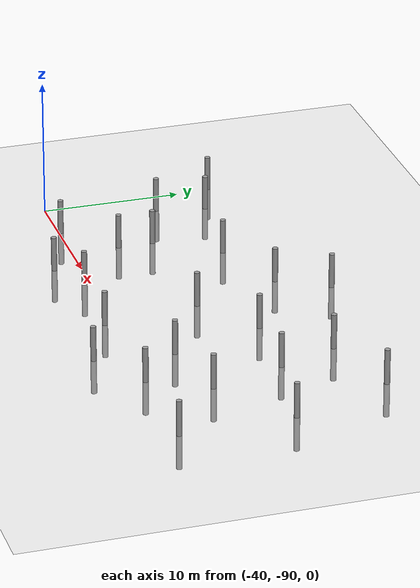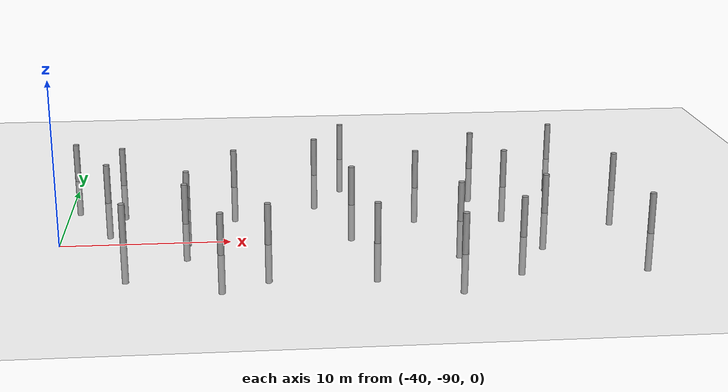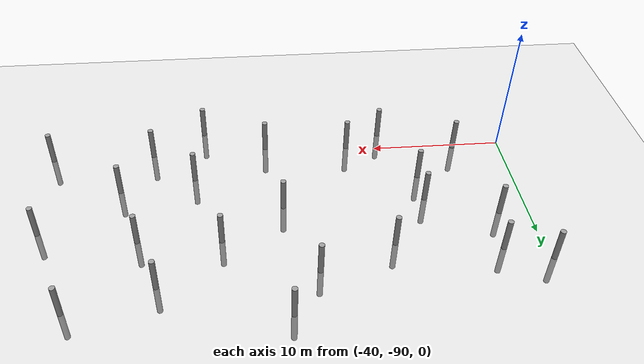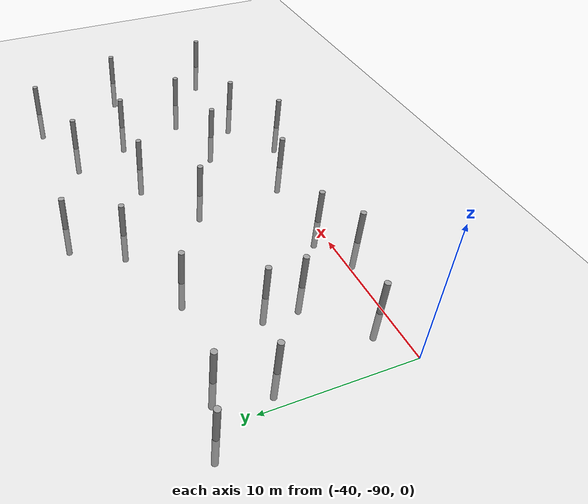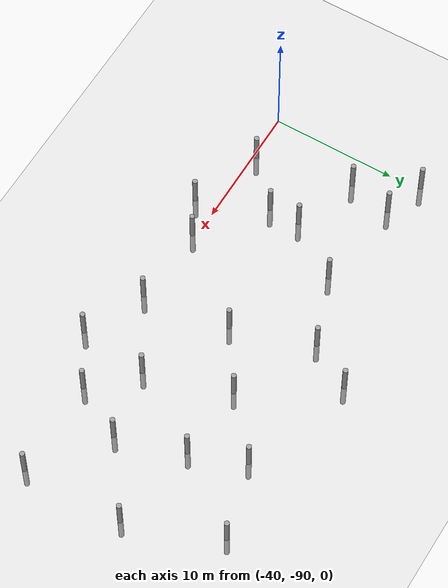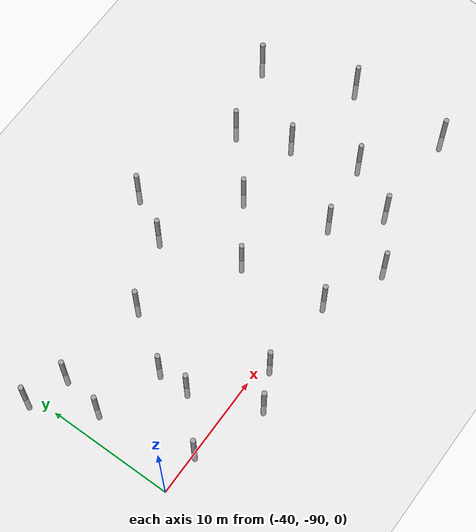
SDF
<sdf version="1.6">
 <world name="default">
  <model name="ground_plane">
   <static>1</static>
   <link name="link">
    <collision name="collision">
     <geometry><plane><normal>0 0 1</normal><size>100 100</size></plane></geometry>
     <surface><friction><ode><mu>100</mu><mu2>50</mu2></ode></friction></surface>
    </collision>
    <visual name="visual">
     <cast_shadows>0</cast_shadows>
     <geometry><plane><normal>0 0 1</normal><size>100 100</size></plane></geometry>
     <material>
      <script><uri>file://media/materials/scripts/gazebo.material</uri><name>Gazebo/Grey</name></script>
     </material>
    </visual>
   </link>
  </model>
  <model name="empty_pillars_12">
   <model name="empty_pillar_clone">
    <link name="link">
     <inertial>
      <mass>1</mass>
      <inertia><ixx>0.145833</ixx><ixy>0</ixy><ixz>0</ixz><iyy>0.145833</iyy><iyz>0</iyz><izz>0.125</izz></inertia>
     </inertial>
     <visual name="visual">
      <geometry><cylinder><radius>0.2</radius><length>5</length></cylinder></geometry>
      <material>
       <script><name>Gazebo/Grey</name><uri>file://media/materials/scripts/gazebo.material</uri></script>
       <shader type="vertex"><normal_map>__default__</normal_map></shader>
       <ambient>0.3 0.3 0.3 1</ambient>
       <diffuse>0.7 0.7 0.7 1</diffuse>
       <specular>0.01 0.01 0.01 1</specular>
       <emissive>0 0 0 1</emissive>
      </material>
     </visual>
     <collision name="collision">
      <geometry><cylinder><radius>0.05</radius><length>5</length></cylinder></geometry>
      <surface>
       <friction>
        <ode><mu>1</mu><mu2>1</mu2><fdir1>0 0 0</fdir1><slip1>0</slip1><slip2>0</slip2></ode>
        <torsional>
         <coefficient>1</coefficient>
         <patch_radius>0</patch_radius>
         <surface_radius>0</surface_radius>
         <use_patch_radius>1</use_patch_radius>
         <ode><slip>0</slip></ode>
        </torsional>
       </friction>
       <bounce><restitution_coefficient>0</restitution_coefficient><threshold>1e+06</threshold></bounce>
       <contact>
        <collide_without_contact>0</collide_without_contact>
        <collide_without_contact_bitmask>1</collide_without_contact_bitmask>
        <collide_bitmask>1</collide_bitmask>
        <ode>
         <soft_cfm>0</soft_cfm>
         <soft_erp>0.2</soft_erp>
         <kp>1e+13</kp>
         <kd>1</kd>
         <max_vel>0.01</max_vel>
         <min_depth>0</min_depth>
        </ode>
        <bullet>
         <split_impulse>1</split_impulse>
         <split_impulse_penetration_threshold>-0.01</split_impulse_penetration_threshold>
         <soft_cfm>0</soft_cfm>
         <soft_erp>0.2</soft_erp>
         <kp>1e+13</kp>
         <kd>1</kd>
        </bullet>
       </contact>
      </surface>
     </collision>
    </link>
    <static>0</static>
    <pose>1.47843 -4.49529 0 0 -0 0</pose>
   </model>
   <model name="empty_pillar_clone_0">
    <link name="link">
     <inertial>
      <mass>1</mass>
      <inertia><ixx>0.145833</ixx><ixy>0</ixy><ixz>0</ixz><iyy>0.145833</iyy><iyz>0</iyz><izz>0.125</izz></inertia>
     </inertial>
     <visual name="visual">
      <geometry><cylinder><radius>0.2</radius><length>5</length></cylinder></geometry>
      <material>
       <script><name>Gazebo/Grey</name><uri>file://media/materials/scripts/gazebo.material</uri></script>
       <shader type="vertex"><normal_map>__default__</normal_map></shader>
       <ambient>0.3 0.3 0.3 1</ambient>
       <diffuse>0.7 0.7 0.7 1</diffuse>
       <specular>0.01 0.01 0.01 1</specular>
       <emissive>0 0 0 1</emissive>
      </material>
     </visual>
     <collision name="collision">
      <geometry><cylinder><radius>0.05</radius><length>5</length></cylinder></geometry>
      <surface>
       <friction>
        <ode><mu>1</mu><mu2>1</mu2><fdir1>0 0 0</fdir1><slip1>0</slip1><slip2>0</slip2></ode>
        <torsional>
         <coefficient>1</coefficient>
         <patch_radius>0</patch_radius>
         <surface_radius>0</surface_radius>
         <use_patch_radius>1</use_patch_radius>
         <ode><slip>0</slip></ode>
        </torsional>
       </friction>
       <bounce><restitution_coefficient>0</restitution_coefficient><threshold>1e+06</threshold></bounce>
       <contact>
        <collide_without_contact>0</collide_without_contact>
        <collide_without_contact_bitmask>1</collide_without_contact_bitmask>
        <collide_bitmask>1</collide_bitmask>
        <ode>
         <soft_cfm>0</soft_cfm>
         <soft_erp>0.2</soft_erp>
         <kp>1e+13</kp>
         <kd>1</kd>
         <max_vel>0.01</max_vel>
         <min_depth>0</min_depth>
        </ode>
        <bullet>
         <split_impulse>1</split_impulse>
         <split_impulse_penetration_threshold>-0.01</split_impulse_penetration_threshold>
         <soft_cfm>0</soft_cfm>
         <soft_erp>0.2</soft_erp>
         <kp>1e+13</kp>
         <kd>1</kd>
        </bullet>
       </contact>
      </surface>
     </collision>
    </link>
    <static>0</static>
    <pose>10.3453 -7.35986 0 0 -0 0</pose>
   </model>
   <model name="empty_pillar_clone_10">
    <link name="link">
     <inertial>
      <mass>1</mass>
      <inertia><ixx>0.145833</ixx><ixy>0</ixy><ixz>0</ixz><iyy>0.145833</iyy><iyz>0</iyz><izz>0.125</izz></inertia>
     </inertial>
     <visual name="visual">
      <geometry><cylinder><radius>0.2</radius><length>5</length></cylinder></geometry>
      <material>
       <script><name>Gazebo/Grey</name><uri>file://media/materials/scripts/gazebo.material</uri></script>
       <shader type="vertex"><normal_map>__default__</normal_map></shader>
       <ambient>0.3 0.3 0.3 1</ambient>
       <diffuse>0.7 0.7 0.7 1</diffuse>
       <specular>0.01 0.01 0.01 1</specular>
       <emissive>0 0 0 1</emissive>
      </material>
     </visual>
     <collision name="collision">
      <geometry><cylinder><radius>0.05</radius><length>5</length></cylinder></geometry>
      <surface>
       <friction>
        <ode><mu>1</mu><mu2>1</mu2><fdir1>0 0 0</fdir1><slip1>0</slip1><slip2>0</slip2></ode>
        <torsional>
         <coefficient>1</coefficient>
         <patch_radius>0</patch_radius>
         <surface_radius>0</surface_radius>
         <use_patch_radius>1</use_patch_radius>
         <ode><slip>0</slip></ode>
        </torsional>
       </friction>
       <bounce><restitution_coefficient>0</restitution_coefficient><threshold>1e+06</threshold></bounce>
       <contact>
        <collide_without_contact>0</collide_without_contact>
        <collide_without_contact_bitmask>1</collide_without_contact_bitmask>
        <collide_bitmask>1</collide_bitmask>
        <ode>
         <soft_cfm>0</soft_cfm>
         <soft_erp>0.2</soft_erp>
         <kp>1e+13</kp>
         <kd>1</kd>
         <max_vel>0.01</max_vel>
         <min_depth>0</min_depth>
        </ode>
        <bullet>
         <split_impulse>1</split_impulse>
         <split_impulse_penetration_threshold>-0.01</split_impulse_penetration_threshold>
         <soft_cfm>0</soft_cfm>
         <soft_erp>0.2</soft_erp>
         <kp>1e+13</kp>
         <kd>1</kd>
        </bullet>
       </contact>
      </surface>
     </collision>
    </link>
    <static>0</static>
    <pose>13.5083 -16.8403 0 0 -0 0</pose>
   </model>
   <model name="empty_pillar_clone_11">
    <link name="link">
     <inertial>
      <mass>1</mass>
      <inertia><ixx>0.145833</ixx><ixy>0</ixy><ixz>0</ixz><iyy>0.145833</iyy><iyz>0</iyz><izz>0.125</izz></inertia>
     </inertial>
     <visual name="visual">
      <geometry><cylinder><radius>0.2</radius><length>5</length></cylinder></geometry>
      <material>
       <script><name>Gazebo/Grey</name><uri>file://media/materials/scripts/gazebo.material</uri></script>
       <shader type="vertex"><normal_map>__default__</normal_map></shader>
       <ambient>0.3 0.3 0.3 1</ambient>
       <diffuse>0.7 0.7 0.7 1</diffuse>
       <specular>0.01 0.01 0.01 1</specular>
       <emissive>0 0 0 1</emissive>
      </material>
     </visual>
     <collision name="collision">
      <geometry><cylinder><radius>0.05</radius><length>5</length></cylinder></geometry>
      <surface>
       <friction>
        <ode><mu>1</mu><mu2>1</mu2><fdir1>0 0 0</fdir1><slip1>0</slip1><slip2>0</slip2></ode>
        <torsional>
         <coefficient>1</coefficient>
         <patch_radius>0</patch_radius>
         <surface_radius>0</surface_radius>
         <use_patch_radius>1</use_patch_radius>
         <ode><slip>0</slip></ode>
        </torsional>
       </friction>
       <bounce><restitution_coefficient>0</restitution_coefficient><threshold>1e+06</threshold></bounce>
       <contact>
        <collide_without_contact>0</collide_without_contact>
        <collide_without_contact_bitmask>1</collide_without_contact_bitmask>
        <collide_bitmask>1</collide_bitmask>
        <ode>
         <soft_cfm>0</soft_cfm>
         <soft_erp>0.2</soft_erp>
         <kp>1e+13</kp>
         <kd>1</kd>
         <max_vel>0.01</max_vel>
         <min_depth>0</min_depth>
        </ode>
        <bullet>
         <split_impulse>1</split_impulse>
         <split_impulse_penetration_threshold>-0.01</split_impulse_penetration_threshold>
         <soft_cfm>0</soft_cfm>
         <soft_erp>0.2</soft_erp>
         <kp>1e+13</kp>
         <kd>1</kd>
        </bullet>
       </contact>
      </surface>
     </collision>
    </link>
    <static>0</static>
    <pose>7.98536 -17.8403 0 0 -0 0</pose>
   </model>
   <model name="empty_pillar_clone_12">
    <link name="link">
     <inertial>
      <mass>1</mass>
      <inertia><ixx>0.145833</ixx><ixy>0</ixy><ixz>0</ixz><iyy>0.145833</iyy><iyz>0</iyz><izz>0.125</izz></inertia>
     </inertial>
     <visual name="visual">
      <geometry><cylinder><radius>0.2</radius><length>5</length></cylinder></geometry>
      <material>
       <script><name>Gazebo/Grey</name><uri>file://media/materials/scripts/gazebo.material</uri></script>
       <shader type="vertex"><normal_map>__default__</normal_map></shader>
       <ambient>0.3 0.3 0.3 1</ambient>
       <diffuse>0.7 0.7 0.7 1</diffuse>
       <specular>0.01 0.01 0.01 1</specular>
       <emissive>0 0 0 1</emissive>
      </material>
     </visual>
     <collision name="collision">
      <geometry><cylinder><radius>0.05</radius><length>5</length></cylinder></geometry>
      <surface>
       <friction>
        <ode><mu>1</mu><mu2>1</mu2><fdir1>0 0 0</fdir1><slip1>0</slip1><slip2>0</slip2></ode>
        <torsional>
         <coefficient>1</coefficient>
         <patch_radius>0</patch_radius>
         <surface_radius>0</surface_radius>
         <use_patch_radius>1</use_patch_radius>
         <ode><slip>0</slip></ode>
        </torsional>
       </friction>
       <bounce><restitution_coefficient>0</restitution_coefficient><threshold>1e+06</threshold></bounce>
       <contact>
        <collide_without_contact>0</collide_without_contact>
        <collide_without_contact_bitmask>1</collide_without_contact_bitmask>
        <collide_bitmask>1</collide_bitmask>
        <ode>
         <soft_cfm>0</soft_cfm>
         <soft_erp>0.2</soft_erp>
         <kp>1e+13</kp>
         <kd>1</kd>
         <max_vel>0.01</max_vel>
         <min_depth>0</min_depth>
        </ode>
        <bullet>
         <split_impulse>1</split_impulse>
         <split_impulse_penetration_threshold>-0.01</split_impulse_penetration_threshold>
         <soft_cfm>0</soft_cfm>
         <soft_erp>0.2</soft_erp>
         <kp>1e+13</kp>
         <kd>1</kd>
        </bullet>
       </contact>
      </surface>
     </collision>
    </link>
    <static>0</static>
    <pose>-4.01464 -20.8403 0 0 -0 0</pose>
   </model>
   <model name="empty_pillar_clone_13">
    <link name="link">
     <inertial>
      <mass>1</mass>
      <inertia><ixx>0.145833</ixx><ixy>0</ixy><ixz>0</ixz><iyy>0.145833</iyy><iyz>0</iyz><izz>0.125</izz></inertia>
     </inertial>
     <visual name="visual">
      <geometry><cylinder><radius>0.2</radius><length>5</length></cylinder></geometry>
      <material>
       <script><name>Gazebo/Grey</name><uri>file://media/materials/scripts/gazebo.material</uri></script>
       <shader type="vertex"><normal_map>__default__</normal_map></shader>
       <ambient>0.3 0.3 0.3 1</ambient>
       <diffuse>0.7 0.7 0.7 1</diffuse>
       <specular>0.01 0.01 0.01 1</specular>
       <emissive>0 0 0 1</emissive>
      </material>
     </visual>
     <collision name="collision">
      <geometry><cylinder><radius>0.05</radius><length>5</length></cylinder></geometry>
      <surface>
       <friction>
        <ode><mu>1</mu><mu2>1</mu2><fdir1>0 0 0</fdir1><slip1>0</slip1><slip2>0</slip2></ode>
        <torsional>
         <coefficient>1</coefficient>
         <patch_radius>0</patch_radius>
         <surface_radius>0</surface_radius>
         <use_patch_radius>1</use_patch_radius>
         <ode><slip>0</slip></ode>
        </torsional>
       </friction>
       <bounce><restitution_coefficient>0</restitution_coefficient><threshold>1e+06</threshold></bounce>
       <contact>
        <collide_without_contact>0</collide_without_contact>
        <collide_without_contact_bitmask>1</collide_without_contact_bitmask>
        <collide_bitmask>1</collide_bitmask>
        <ode>
         <soft_cfm>0</soft_cfm>
         <soft_erp>0.2</soft_erp>
         <kp>1e+13</kp>
         <kd>1</kd>
         <max_vel>0.01</max_vel>
         <min_depth>0</min_depth>
        </ode>
        <bullet>
         <split_impulse>1</split_impulse>
         <split_impulse_penetration_threshold>-0.01</split_impulse_penetration_threshold>
         <soft_cfm>0</soft_cfm>
         <soft_erp>0.2</soft_erp>
         <kp>1e+13</kp>
         <kd>1</kd>
        </bullet>
       </contact>
      </surface>
     </collision>
    </link>
    <static>0</static>
    <pose>-9.01464 -14.4259 0 0 -0 0</pose>
   </model>
   <model name="empty_pillar_clone_3">
    <link name="link">
     <inertial>
      <mass>1</mass>
      <inertia><ixx>0.145833</ixx><ixy>0</ixy><ixz>0</ixz><iyy>0.145833</iyy><iyz>0</iyz><izz>0.125</izz></inertia>
     </inertial>
     <visual name="visual">
      <geometry><cylinder><radius>0.2</radius><length>5</length></cylinder></geometry>
      <material>
       <script><name>Gazebo/Grey</name><uri>file://media/materials/scripts/gazebo.material</uri></script>
       <shader type="vertex"><normal_map>__default__</normal_map></shader>
       <ambient>0.3 0.3 0.3 1</ambient>
       <diffuse>0.7 0.7 0.7 1</diffuse>
       <specular>0.01 0.01 0.01 1</specular>
       <emissive>0 0 0 1</emissive>
      </material>
     </visual>
     <collision name="collision">
      <geometry><cylinder><radius>0.05</radius><length>5</length></cylinder></geometry>
      <surface>
       <friction>
        <ode><mu>1</mu><mu2>1</mu2><fdir1>0 0 0</fdir1><slip1>0</slip1><slip2>0</slip2></ode>
        <torsional>
         <coefficient>1</coefficient>
         <patch_radius>0</patch_radius>
         <surface_radius>0</surface_radius>
         <use_patch_radius>1</use_patch_radius>
         <ode><slip>0</slip></ode>
        </torsional>
       </friction>
       <bounce><restitution_coefficient>0</restitution_coefficient><threshold>1e+06</threshold></bounce>
       <contact>
        <collide_without_contact>0</collide_without_contact>
        <collide_without_contact_bitmask>1</collide_without_contact_bitmask>
        <collide_bitmask>1</collide_bitmask>
        <ode>
         <soft_cfm>0</soft_cfm>
         <soft_erp>0.2</soft_erp>
         <kp>1e+13</kp>
         <kd>1</kd>
         <max_vel>0.01</max_vel>
         <min_depth>0</min_depth>
        </ode>
        <bullet>
         <split_impulse>1</split_impulse>
         <split_impulse_penetration_threshold>-0.01</split_impulse_penetration_threshold>
         <soft_cfm>0</soft_cfm>
         <soft_erp>0.2</soft_erp>
         <kp>1e+13</kp>
         <kd>1</kd>
        </bullet>
       </contact>
      </surface>
     </collision>
    </link>
    <static>0</static>
    <pose>5.99316 -11.2211 0 0 -0 0</pose>
   </model>
   <model name="empty_pillar_clone_34">
    <link name="link">
     <inertial>
      <mass>1</mass>
      <inertia><ixx>0.145833</ixx><ixy>0</ixy><ixz>0</ixz><iyy>0.145833</iyy><iyz>0</iyz><izz>0.125</izz></inertia>
     </inertial>
     <visual name="visual">
      <geometry><cylinder><radius>0.2</radius><length>5</length></cylinder></geometry>
      <material>
       <script><name>Gazebo/Grey</name><uri>file://media/materials/scripts/gazebo.material</uri></script>
       <shader type="vertex"><normal_map>__default__</normal_map></shader>
       <ambient>0.3 0.3 0.3 1</ambient>
       <diffuse>0.7 0.7 0.7 1</diffuse>
       <specular>0.01 0.01 0.01 1</specular>
       <emissive>0 0 0 1</emissive>
      </material>
     </visual>
     <collision name="collision">
      <geometry><cylinder><radius>0.05</radius><length>5</length></cylinder></geometry>
      <surface>
       <friction>
        <ode><mu>1</mu><mu2>1</mu2><fdir1>0 0 0</fdir1><slip1>0</slip1><slip2>0</slip2></ode>
        <torsional>
         <coefficient>1</coefficient>
         <patch_radius>0</patch_radius>
         <surface_radius>0</surface_radius>
         <use_patch_radius>1</use_patch_radius>
         <ode><slip>0</slip></ode>
        </torsional>
       </friction>
       <bounce><restitution_coefficient>0</restitution_coefficient><threshold>1e+06</threshold></bounce>
       <contact>
        <collide_without_contact>0</collide_without_contact>
        <collide_without_contact_bitmask>1</collide_without_contact_bitmask>
        <collide_bitmask>1</collide_bitmask>
        <ode>
         <soft_cfm>0</soft_cfm>
         <soft_erp>0.2</soft_erp>
         <kp>1e+13</kp>
         <kd>1</kd>
         <max_vel>0.01</max_vel>
         <min_depth>0</min_depth>
        </ode>
        <bullet>
         <split_impulse>1</split_impulse>
         <split_impulse_penetration_threshold>-0.01</split_impulse_penetration_threshold>
         <soft_cfm>0</soft_cfm>
         <soft_erp>0.2</soft_erp>
         <kp>1e+13</kp>
         <kd>1</kd>
        </bullet>
       </contact>
      </surface>
     </collision>
    </link>
    <static>0</static>
    <pose>19.0861 -20.8946 0 0 -0 0</pose>
   </model>
   <model name="empty_pillar_clone_37">
    <link name="link">
     <inertial>
      <mass>1</mass>
      <inertia><ixx>0.145833</ixx><ixy>0</ixy><ixz>0</ixz><iyy>0.145833</iyy><iyz>0</iyz><izz>0.125</izz></inertia>
     </inertial>
     <visual name="visual">
      <geometry><cylinder><radius>0.2</radius><length>5</length></cylinder></geometry>
      <material>
       <script><name>Gazebo/Grey</name><uri>file://media/materials/scripts/gazebo.material</uri></script>
       <shader type="vertex"><normal_map>__default__</normal_map></shader>
       <ambient>0.3 0.3 0.3 1</ambient>
       <diffuse>0.7 0.7 0.7 1</diffuse>
       <specular>0.01 0.01 0.01 1</specular>
       <emissive>0 0 0 1</emissive>
      </material>
     </visual>
     <collision name="collision">
      <geometry><cylinder><radius>0.05</radius><length>5</length></cylinder></geometry>
      <surface>
       <friction>
        <ode><mu>1</mu><mu2>1</mu2><fdir1>0 0 0</fdir1><slip1>0</slip1><slip2>0</slip2></ode>
        <torsional>
         <coefficient>1</coefficient>
         <patch_radius>0</patch_radius>
         <surface_radius>0</surface_radius>
         <use_patch_radius>1</use_patch_radius>
         <ode><slip>0</slip></ode>
        </torsional>
       </friction>
       <bounce><restitution_coefficient>0</restitution_coefficient><threshold>1e+06</threshold></bounce>
       <contact>
        <collide_without_contact>0</collide_without_contact>
        <collide_without_contact_bitmask>1</collide_without_contact_bitmask>
        <collide_bitmask>1</collide_bitmask>
        <ode>
         <soft_cfm>0</soft_cfm>
         <soft_erp>0.2</soft_erp>
         <kp>1e+13</kp>
         <kd>1</kd>
         <max_vel>0.01</max_vel>
         <min_depth>0</min_depth>
        </ode>
        <bullet>
         <split_impulse>1</split_impulse>
         <split_impulse_penetration_threshold>-0.01</split_impulse_penetration_threshold>
         <soft_cfm>0</soft_cfm>
         <soft_erp>0.2</soft_erp>
         <kp>1e+13</kp>
         <kd>1</kd>
        </bullet>
       </contact>
      </surface>
     </collision>
    </link>
    <static>0</static>
    <pose>-16.6035 -7.98282 0 0 -0 0</pose>
   </model>
   <model name="empty_pillar_clone_39">
    <link name="link">
     <inertial>
      <mass>1</mass>
      <inertia><ixx>0.145833</ixx><ixy>0</ixy><ixz>0</ixz><iyy>0.145833</iyy><iyz>0</iyz><izz>0.125</izz></inertia>
     </inertial>
     <visual name="visual">
      <geometry><cylinder><radius>0.2</radius><length>5</length></cylinder></geometry>
      <material>
       <script><name>Gazebo/Grey</name><uri>file://media/materials/scripts/gazebo.material</uri></script>
       <shader type="vertex"><normal_map>__default__</normal_map></shader>
       <ambient>0.3 0.3 0.3 1</ambient>
       <diffuse>0.7 0.7 0.7 1</diffuse>
       <specular>0.01 0.01 0.01 1</specular>
       <emissive>0 0 0 1</emissive>
      </material>
     </visual>
     <collision name="collision">
      <geometry><cylinder><radius>0.05</radius><length>5</length></cylinder></geometry>
      <surface>
       <friction>
        <ode><mu>1</mu><mu2>1</mu2><fdir1>0 0 0</fdir1><slip1>0</slip1><slip2>0</slip2></ode>
        <torsional>
         <coefficient>1</coefficient>
         <patch_radius>0</patch_radius>
         <surface_radius>0</surface_radius>
         <use_patch_radius>1</use_patch_radius>
         <ode><slip>0</slip></ode>
        </torsional>
       </friction>
       <bounce><restitution_coefficient>0</restitution_coefficient><threshold>1e+06</threshold></bounce>
       <contact>
        <collide_without_contact>0</collide_without_contact>
        <collide_without_contact_bitmask>1</collide_without_contact_bitmask>
        <collide_bitmask>1</collide_bitmask>
        <ode>
         <soft_cfm>0</soft_cfm>
         <soft_erp>0.2</soft_erp>
         <kp>1e+13</kp>
         <kd>1</kd>
         <max_vel>0.01</max_vel>
         <min_depth>0</min_depth>
        </ode>
        <bullet>
         <split_impulse>1</split_impulse>
         <split_impulse_penetration_threshold>-0.01</split_impulse_penetration_threshold>
         <soft_cfm>0</soft_cfm>
         <soft_erp>0.2</soft_erp>
         <kp>1e+13</kp>
         <kd>1</kd>
        </bullet>
       </contact>
      </surface>
     </collision>
    </link>
    <static>0</static>
    <pose>-13.4361 -9.12638 0 0 -0 0</pose>
   </model>
   <model name="empty_pillar_clone_4">
    <link name="link">
     <inertial>
      <mass>1</mass>
      <inertia><ixx>0.145833</ixx><ixy>0</ixy><ixz>0</ixz><iyy>0.145833</iyy><iyz>0</iyz><izz>0.125</izz></inertia>
     </inertial>
     <visual name="visual">
      <geometry><cylinder><radius>0.2</radius><length>5</length></cylinder></geometry>
      <material>
       <script><name>Gazebo/Grey</name><uri>file://media/materials/scripts/gazebo.material</uri></script>
       <shader type="vertex"><normal_map>__default__</normal_map></shader>
       <ambient>0.3 0.3 0.3 1</ambient>
       <diffuse>0.7 0.7 0.7 1</diffuse>
       <specular>0.01 0.01 0.01 1</specular>
       <emissive>0 0 0 1</emissive>
      </material>
     </visual>
     <collision name="collision">
      <geometry><cylinder><radius>0.05</radius><length>5</length></cylinder></geometry>
      <surface>
       <friction>
        <ode><mu>1</mu><mu2>1</mu2><fdir1>0 0 0</fdir1><slip1>0</slip1><slip2>0</slip2></ode>
        <torsional>
         <coefficient>1</coefficient>
         <patch_radius>0</patch_radius>
         <surface_radius>0</surface_radius>
         <use_patch_radius>1</use_patch_radius>
         <ode><slip>0</slip></ode>
        </torsional>
       </friction>
       <bounce><restitution_coefficient>0</restitution_coefficient><threshold>1e+06</threshold></bounce>
       <contact>
        <collide_without_contact>0</collide_without_contact>
        <collide_without_contact_bitmask>1</collide_without_contact_bitmask>
        <collide_bitmask>1</collide_bitmask>
        <ode>
         <soft_cfm>0</soft_cfm>
         <soft_erp>0.2</soft_erp>
         <kp>1e+13</kp>
         <kd>1</kd>
         <max_vel>0.01</max_vel>
         <min_depth>0</min_depth>
        </ode>
        <bullet>
         <split_impulse>1</split_impulse>
         <split_impulse_penetration_threshold>-0.01</split_impulse_penetration_threshold>
         <soft_cfm>0</soft_cfm>
         <soft_erp>0.2</soft_erp>
         <kp>1e+13</kp>
         <kd>1</kd>
        </bullet>
       </contact>
      </surface>
     </collision>
    </link>
    <static>0</static>
    <pose>1.48428 -14.2998 0 0 -0 0</pose>
   </model>
   <model name="empty_pillar_clone_41">
    <link name="link">
     <inertial>
      <mass>1</mass>
      <inertia><ixx>0.145833</ixx><ixy>0</ixy><ixz>0</ixz><iyy>0.145833</iyy><iyz>0</iyz><izz>0.125</izz></inertia>
     </inertial>
     <visual name="visual">
      <geometry><cylinder><radius>0.2</radius><length>5</length></cylinder></geometry>
      <material>
       <script><name>Gazebo/Grey</name><uri>file://media/materials/scripts/gazebo.material</uri></script>
       <shader type="vertex"><normal_map>__default__</normal_map></shader>
       <ambient>0.3 0.3 0.3 1</ambient>
       <diffuse>0.7 0.7 0.7 1</diffuse>
       <specular>0.01 0.01 0.01 1</specular>
       <emissive>0 0 0 1</emissive>
      </material>
     </visual>
     <collision name="collision">
      <geometry><cylinder><radius>0.05</radius><length>5</length></cylinder></geometry>
      <surface>
       <friction>
        <ode><mu>1</mu><mu2>1</mu2><fdir1>0 0 0</fdir1><slip1>0</slip1><slip2>0</slip2></ode>
        <torsional>
         <coefficient>1</coefficient>
         <patch_radius>0</patch_radius>
         <surface_radius>0</surface_radius>
         <use_patch_radius>1</use_patch_radius>
         <ode><slip>0</slip></ode>
        </torsional>
       </friction>
       <bounce><restitution_coefficient>0</restitution_coefficient><threshold>1e+06</threshold></bounce>
       <contact>
        <collide_without_contact>0</collide_without_contact>
        <collide_without_contact_bitmask>1</collide_without_contact_bitmask>
        <collide_bitmask>1</collide_bitmask>
        <ode>
         <soft_cfm>0</soft_cfm>
         <soft_erp>0.2</soft_erp>
         <kp>1e+13</kp>
         <kd>1</kd>
         <max_vel>0.01</max_vel>
         <min_depth>0</min_depth>
        </ode>
        <bullet>
         <split_impulse>1</split_impulse>
         <split_impulse_penetration_threshold>-0.01</split_impulse_penetration_threshold>
         <soft_cfm>0</soft_cfm>
         <soft_erp>0.2</soft_erp>
         <kp>1e+13</kp>
         <kd>1</kd>
        </bullet>
       </contact>
      </surface>
     </collision>
    </link>
    <static>0</static>
    <pose>-14.1448 -12.6326 0 0 -0 0</pose>
   </model>
   <model name="empty_pillar_clone_42">
    <link name="link">
     <inertial>
      <mass>1</mass>
      <inertia><ixx>0.145833</ixx><ixy>0</ixy><ixz>0</ixz><iyy>0.145833</iyy><iyz>0</iyz><izz>0.125</izz></inertia>
     </inertial>
     <visual name="visual">
      <geometry><cylinder><radius>0.2</radius><length>5</length></cylinder></geometry>
      <material>
       <script><name>Gazebo/Grey</name><uri>file://media/materials/scripts/gazebo.material</uri></script>
       <shader type="vertex"><normal_map>__default__</normal_map></shader>
       <ambient>0.3 0.3 0.3 1</ambient>
       <diffuse>0.7 0.7 0.7 1</diffuse>
       <specular>0.01 0.01 0.01 1</specular>
       <emissive>0 0 0 1</emissive>
      </material>
     </visual>
     <collision name="collision">
      <geometry><cylinder><radius>0.05</radius><length>5</length></cylinder></geometry>
      <surface>
       <friction>
        <ode><mu>1</mu><mu2>1</mu2><fdir1>0 0 0</fdir1><slip1>0</slip1><slip2>0</slip2></ode>
        <torsional>
         <coefficient>1</coefficient>
         <patch_radius>0</patch_radius>
         <surface_radius>0</surface_radius>
         <use_patch_radius>1</use_patch_radius>
         <ode><slip>0</slip></ode>
        </torsional>
       </friction>
       <bounce><restitution_coefficient>0</restitution_coefficient><threshold>1e+06</threshold></bounce>
       <contact>
        <collide_without_contact>0</collide_without_contact>
        <collide_without_contact_bitmask>1</collide_without_contact_bitmask>
        <collide_bitmask>1</collide_bitmask>
        <ode>
         <soft_cfm>0</soft_cfm>
         <soft_erp>0.2</soft_erp>
         <kp>1e+13</kp>
         <kd>1</kd>
         <max_vel>0.01</max_vel>
         <min_depth>0</min_depth>
        </ode>
        <bullet>
         <split_impulse>1</split_impulse>
         <split_impulse_penetration_threshold>-0.01</split_impulse_penetration_threshold>
         <soft_cfm>0</soft_cfm>
         <soft_erp>0.2</soft_erp>
         <kp>1e+13</kp>
         <kd>1</kd>
        </bullet>
       </contact>
      </surface>
     </collision>
    </link>
    <static>0</static>
    <pose>-12.5409 -20.2416 0 0 -0 0</pose>
   </model>
   <model name="empty_pillar_clone_44">
    <link name="link">
     <inertial>
      <mass>1</mass>
      <inertia><ixx>0.145833</ixx><ixy>0</ixy><ixz>0</ixz><iyy>0.145833</iyy><iyz>0</iyz><izz>0.125</izz></inertia>
     </inertial>
     <visual name="visual">
      <geometry><cylinder><radius>0.2</radius><length>5</length></cylinder></geometry>
      <material>
       <script><name>Gazebo/Grey</name><uri>file://media/materials/scripts/gazebo.material</uri></script>
       <shader type="vertex"><normal_map>__default__</normal_map></shader>
       <ambient>0.3 0.3 0.3 1</ambient>
       <diffuse>0.7 0.7 0.7 1</diffuse>
       <specular>0.01 0.01 0.01 1</specular>
       <emissive>0 0 0 1</emissive>
      </material>
     </visual>
     <collision name="collision">
      <geometry><cylinder><radius>0.05</radius><length>5</length></cylinder></geometry>
      <surface>
       <friction>
        <ode><mu>1</mu><mu2>1</mu2><fdir1>0 0 0</fdir1><slip1>0</slip1><slip2>0</slip2></ode>
        <torsional>
         <coefficient>1</coefficient>
         <patch_radius>0</patch_radius>
         <surface_radius>0</surface_radius>
         <use_patch_radius>1</use_patch_radius>
         <ode><slip>0</slip></ode>
        </torsional>
       </friction>
       <bounce><restitution_coefficient>0</restitution_coefficient><threshold>1e+06</threshold></bounce>
       <contact>
        <collide_without_contact>0</collide_without_contact>
        <collide_without_contact_bitmask>1</collide_without_contact_bitmask>
        <collide_bitmask>1</collide_bitmask>
        <ode>
         <soft_cfm>0</soft_cfm>
         <soft_erp>0.2</soft_erp>
         <kp>1e+13</kp>
         <kd>1</kd>
         <max_vel>0.01</max_vel>
         <min_depth>0</min_depth>
        </ode>
        <bullet>
         <split_impulse>1</split_impulse>
         <split_impulse_penetration_threshold>-0.01</split_impulse_penetration_threshold>
         <soft_cfm>0</soft_cfm>
         <soft_erp>0.2</soft_erp>
         <kp>1e+13</kp>
         <kd>1</kd>
        </bullet>
       </contact>
      </surface>
     </collision>
    </link>
    <static>0</static>
    <pose>-6.78285 -22.2729 0 0 -0 0</pose>
   </model>
   <model name="empty_pillar_clone_45">
    <link name="link">
     <inertial>
      <mass>1</mass>
      <inertia><ixx>0.145833</ixx><ixy>0</ixy><ixz>0</ixz><iyy>0.145833</iyy><iyz>0</iyz><izz>0.125</izz></inertia>
     </inertial>
     <visual name="visual">
      <geometry><cylinder><radius>0.2</radius><length>5</length></cylinder></geometry>
      <material>
       <script><name>Gazebo/Grey</name><uri>file://media/materials/scripts/gazebo.material</uri></script>
       <shader type="vertex"><normal_map>__default__</normal_map></shader>
       <ambient>0.3 0.3 0.3 1</ambient>
       <diffuse>0.7 0.7 0.7 1</diffuse>
       <specular>0.01 0.01 0.01 1</specular>
       <emissive>0 0 0 1</emissive>
      </material>
     </visual>
     <collision name="collision">
      <geometry><cylinder><radius>0.05</radius><length>5</length></cylinder></geometry>
      <surface>
       <friction>
        <ode><mu>1</mu><mu2>1</mu2><fdir1>0 0 0</fdir1><slip1>0</slip1><slip2>0</slip2></ode>
        <torsional>
         <coefficient>1</coefficient>
         <patch_radius>0</patch_radius>
         <surface_radius>0</surface_radius>
         <use_patch_radius>1</use_patch_radius>
         <ode><slip>0</slip></ode>
        </torsional>
       </friction>
       <bounce><restitution_coefficient>0</restitution_coefficient><threshold>1e+06</threshold></bounce>
       <contact>
        <collide_without_contact>0</collide_without_contact>
        <collide_without_contact_bitmask>1</collide_without_contact_bitmask>
        <collide_bitmask>1</collide_bitmask>
        <ode>
         <soft_cfm>0</soft_cfm>
         <soft_erp>0.2</soft_erp>
         <kp>1e+13</kp>
         <kd>1</kd>
         <max_vel>0.01</max_vel>
         <min_depth>0</min_depth>
        </ode>
        <bullet>
         <split_impulse>1</split_impulse>
         <split_impulse_penetration_threshold>-0.01</split_impulse_penetration_threshold>
         <soft_cfm>0</soft_cfm>
         <soft_erp>0.2</soft_erp>
         <kp>1e+13</kp>
         <kd>1</kd>
        </bullet>
       </contact>
      </surface>
     </collision>
    </link>
    <static>0</static>
    <pose>-9.01076 -16.9307 0 0 -0 0</pose>
   </model>
   <model name="empty_pillar_clone_46">
    <link name="link">
     <inertial>
      <mass>1</mass>
      <inertia><ixx>0.145833</ixx><ixy>0</ixy><ixz>0</ixz><iyy>0.145833</iyy><iyz>0</iyz><izz>0.125</izz></inertia>
     </inertial>
     <visual name="visual">
      <geometry><cylinder><radius>0.2</radius><length>5</length></cylinder></geometry>
      <material>
       <script><name>Gazebo/Grey</name><uri>file://media/materials/scripts/gazebo.material</uri></script>
       <shader type="vertex"><normal_map>__default__</normal_map></shader>
       <ambient>0.3 0.3 0.3 1</ambient>
       <diffuse>0.7 0.7 0.7 1</diffuse>
       <specular>0.01 0.01 0.01 1</specular>
       <emissive>0 0 0 1</emissive>
      </material>
     </visual>
     <collision name="collision">
      <geometry><cylinder><radius>0.05</radius><length>5</length></cylinder></geometry>
      <surface>
       <friction>
        <ode><mu>1</mu><mu2>1</mu2><fdir1>0 0 0</fdir1><slip1>0</slip1><slip2>0</slip2></ode>
        <torsional>
         <coefficient>1</coefficient>
         <patch_radius>0</patch_radius>
         <surface_radius>0</surface_radius>
         <use_patch_radius>1</use_patch_radius>
         <ode><slip>0</slip></ode>
        </torsional>
       </friction>
       <bounce><restitution_coefficient>0</restitution_coefficient><threshold>1e+06</threshold></bounce>
       <contact>
        <collide_without_contact>0</collide_without_contact>
        <collide_without_contact_bitmask>1</collide_without_contact_bitmask>
        <collide_bitmask>1</collide_bitmask>
        <ode>
         <soft_cfm>0</soft_cfm>
         <soft_erp>0.2</soft_erp>
         <kp>1e+13</kp>
         <kd>1</kd>
         <max_vel>0.01</max_vel>
         <min_depth>0</min_depth>
        </ode>
        <bullet>
         <split_impulse>1</split_impulse>
         <split_impulse_penetration_threshold>-0.01</split_impulse_penetration_threshold>
         <soft_cfm>0</soft_cfm>
         <soft_erp>0.2</soft_erp>
         <kp>1e+13</kp>
         <kd>1</kd>
        </bullet>
       </contact>
      </surface>
     </collision>
    </link>
    <static>0</static>
    <pose>2.45033 -21.185 0 0 -0 0</pose>
   </model>
   <model name="empty_pillar_clone_47">
    <link name="link">
     <inertial>
      <mass>1</mass>
      <inertia><ixx>0.145833</ixx><ixy>0</ixy><ixz>0</ixz><iyy>0.145833</iyy><iyz>0</iyz><izz>0.125</izz></inertia>
     </inertial>
     <visual name="visual">
      <geometry><cylinder><radius>0.2</radius><length>5</length></cylinder></geometry>
      <material>
       <script><name>Gazebo/Grey</name><uri>file://media/materials/scripts/gazebo.material</uri></script>
       <shader type="vertex"><normal_map>__default__</normal_map></shader>
       <ambient>0.3 0.3 0.3 1</ambient>
       <diffuse>0.7 0.7 0.7 1</diffuse>
       <specular>0.01 0.01 0.01 1</specular>
       <emissive>0 0 0 1</emissive>
      </material>
     </visual>
     <collision name="collision">
      <geometry><cylinder><radius>0.05</radius><length>5</length></cylinder></geometry>
      <surface>
       <friction>
        <ode><mu>1</mu><mu2>1</mu2><fdir1>0 0 0</fdir1><slip1>0</slip1><slip2>0</slip2></ode>
        <torsional>
         <coefficient>1</coefficient>
         <patch_radius>0</patch_radius>
         <surface_radius>0</surface_radius>
         <use_patch_radius>1</use_patch_radius>
         <ode><slip>0</slip></ode>
        </torsional>
       </friction>
       <bounce><restitution_coefficient>0</restitution_coefficient><threshold>1e+06</threshold></bounce>
       <contact>
        <collide_without_contact>0</collide_without_contact>
        <collide_without_contact_bitmask>1</collide_without_contact_bitmask>
        <collide_bitmask>1</collide_bitmask>
        <ode>
         <soft_cfm>0</soft_cfm>
         <soft_erp>0.2</soft_erp>
         <kp>1e+13</kp>
         <kd>1</kd>
         <max_vel>0.01</max_vel>
         <min_depth>0</min_depth>
        </ode>
        <bullet>
         <split_impulse>1</split_impulse>
         <split_impulse_penetration_threshold>-0.01</split_impulse_penetration_threshold>
         <soft_cfm>0</soft_cfm>
         <soft_erp>0.2</soft_erp>
         <kp>1e+13</kp>
         <kd>1</kd>
        </bullet>
       </contact>
      </surface>
     </collision>
    </link>
    <static>0</static>
    <pose>-0.569433 -7.97346 0 0 -0 0</pose>
   </model>
   <model name="empty_pillar_clone_48">
    <link name="link">
     <inertial>
      <mass>1</mass>
      <inertia><ixx>0.145833</ixx><ixy>0</ixy><ixz>0</ixz><iyy>0.145833</iyy><iyz>0</iyz><izz>0.125</izz></inertia>
     </inertial>
     <visual name="visual">
      <geometry><cylinder><radius>0.2</radius><length>5</length></cylinder></geometry>
      <material>
       <script><name>Gazebo/Grey</name><uri>file://media/materials/scripts/gazebo.material</uri></script>
       <shader type="vertex"><normal_map>__default__</normal_map></shader>
       <ambient>0.3 0.3 0.3 1</ambient>
       <diffuse>0.7 0.7 0.7 1</diffuse>
       <specular>0.01 0.01 0.01 1</specular>
       <emissive>0 0 0 1</emissive>
      </material>
     </visual>
     <collision name="collision">
      <geometry><cylinder><radius>0.05</radius><length>5</length></cylinder></geometry>
      <surface>
       <friction>
        <ode><mu>1</mu><mu2>1</mu2><fdir1>0 0 0</fdir1><slip1>0</slip1><slip2>0</slip2></ode>
        <torsional>
         <coefficient>1</coefficient>
         <patch_radius>0</patch_radius>
         <surface_radius>0</surface_radius>
         <use_patch_radius>1</use_patch_radius>
         <ode><slip>0</slip></ode>
        </torsional>
       </friction>
       <bounce><restitution_coefficient>0</restitution_coefficient><threshold>1e+06</threshold></bounce>
       <contact>
        <collide_without_contact>0</collide_without_contact>
        <collide_without_contact_bitmask>1</collide_without_contact_bitmask>
        <collide_bitmask>1</collide_bitmask>
        <ode>
         <soft_cfm>0</soft_cfm>
         <soft_erp>0.2</soft_erp>
         <kp>1e+13</kp>
         <kd>1</kd>
         <max_vel>0.01</max_vel>
         <min_depth>0</min_depth>
        </ode>
        <bullet>
         <split_impulse>1</split_impulse>
         <split_impulse_penetration_threshold>-0.01</split_impulse_penetration_threshold>
         <soft_cfm>0</soft_cfm>
         <soft_erp>0.2</soft_erp>
         <kp>1e+13</kp>
         <kd>1</kd>
        </bullet>
       </contact>
      </surface>
     </collision>
    </link>
    <static>0</static>
    <pose>16.2633 -5.65052 0 0 -0 0</pose>
   </model>
   <model name="empty_pillar_clone_5">
    <link name="link">
     <inertial>
      <mass>1</mass>
      <inertia><ixx>0.145833</ixx><ixy>0</ixy><ixz>0</ixz><iyy>0.145833</iyy><iyz>0</iyz><izz>0.125</izz></inertia>
     </inertial>
     <visual name="visual">
      <geometry><cylinder><radius>0.2</radius><length>5</length></cylinder></geometry>
      <material>
       <script><name>Gazebo/Grey</name><uri>file://media/materials/scripts/gazebo.material</uri></script>
       <shader type="vertex"><normal_map>__default__</normal_map></shader>
       <ambient>0.3 0.3 0.3 1</ambient>
       <diffuse>0.7 0.7 0.7 1</diffuse>
       <specular>0.01 0.01 0.01 1</specular>
       <emissive>0 0 0 1</emissive>
      </material>
     </visual>
     <collision name="collision">
      <geometry><cylinder><radius>0.05</radius><length>5</length></cylinder></geometry>
      <surface>
       <friction>
        <ode><mu>1</mu><mu2>1</mu2><fdir1>0 0 0</fdir1><slip1>0</slip1><slip2>0</slip2></ode>
        <torsional>
         <coefficient>1</coefficient>
         <patch_radius>0</patch_radius>
         <surface_radius>0</surface_radius>
         <use_patch_radius>1</use_patch_radius>
         <ode><slip>0</slip></ode>
        </torsional>
       </friction>
       <bounce><restitution_coefficient>0</restitution_coefficient><threshold>1e+06</threshold></bounce>
       <contact>
        <collide_without_contact>0</collide_without_contact>
        <collide_without_contact_bitmask>1</collide_without_contact_bitmask>
        <collide_bitmask>1</collide_bitmask>
        <ode>
         <soft_cfm>0</soft_cfm>
         <soft_erp>0.2</soft_erp>
         <kp>1e+13</kp>
         <kd>1</kd>
         <max_vel>0.01</max_vel>
         <min_depth>0</min_depth>
        </ode>
        <bullet>
         <split_impulse>1</split_impulse>
         <split_impulse_penetration_threshold>-0.01</split_impulse_penetration_threshold>
         <soft_cfm>0</soft_cfm>
         <soft_erp>0.2</soft_erp>
         <kp>1e+13</kp>
         <kd>1</kd>
        </bullet>
       </contact>
      </surface>
     </collision>
    </link>
    <static>0</static>
    <pose>-6.03595 -10.0932 0 0 -0 0</pose>
   </model>
   <model name="empty_pillar_clone_51">
    <link name="link">
     <inertial>
      <mass>1</mass>
      <inertia><ixx>0.145833</ixx><ixy>0</ixy><ixz>0</ixz><iyy>0.145833</iyy><iyz>0</iyz><izz>0.125</izz></inertia>
     </inertial>
     <visual name="visual">
      <geometry><cylinder><radius>0.2</radius><length>5</length></cylinder></geometry>
      <material>
       <script><name>Gazebo/Grey</name><uri>file://media/materials/scripts/gazebo.material</uri></script>
       <shader type="vertex"><normal_map>__default__</normal_map></shader>
       <ambient>0.3 0.3 0.3 1</ambient>
       <diffuse>0.7 0.7 0.7 1</diffuse>
       <specular>0.01 0.01 0.01 1</specular>
       <emissive>0 0 0 1</emissive>
      </material>
     </visual>
     <collision name="collision">
      <geometry><cylinder><radius>0.05</radius><length>5</length></cylinder></geometry>
      <surface>
       <friction>
        <ode><mu>1</mu><mu2>1</mu2><fdir1>0 0 0</fdir1><slip1>0</slip1><slip2>0</slip2></ode>
        <torsional>
         <coefficient>1</coefficient>
         <patch_radius>0</patch_radius>
         <surface_radius>0</surface_radius>
         <use_patch_radius>1</use_patch_radius>
         <ode><slip>0</slip></ode>
        </torsional>
       </friction>
       <bounce><restitution_coefficient>0</restitution_coefficient><threshold>1e+06</threshold></bounce>
       <contact>
        <collide_without_contact>0</collide_without_contact>
        <collide_without_contact_bitmask>1</collide_without_contact_bitmask>
        <collide_bitmask>1</collide_bitmask>
        <ode>
         <soft_cfm>0</soft_cfm>
         <soft_erp>0.2</soft_erp>
         <kp>1e+13</kp>
         <kd>1</kd>
         <max_vel>0.01</max_vel>
         <min_depth>0</min_depth>
        </ode>
        <bullet>
         <split_impulse>1</split_impulse>
         <split_impulse_penetration_threshold>-0.01</split_impulse_penetration_threshold>
         <soft_cfm>0</soft_cfm>
         <soft_erp>0.2</soft_erp>
         <kp>1e+13</kp>
         <kd>1</kd>
        </bullet>
       </contact>
      </surface>
     </collision>
    </link>
    <static>0</static>
    <pose>11.8943 -11.5792 0 0 -0 0</pose>
   </model>
   <model name="empty_pillar_clone_52">
    <link name="link">
     <inertial>
      <mass>1</mass>
      <inertia><ixx>0.145833</ixx><ixy>0</ixy><ixz>0</ixz><iyy>0.145833</iyy><iyz>0</iyz><izz>0.125</izz></inertia>
     </inertial>
     <visual name="visual">
      <geometry><cylinder><radius>0.2</radius><length>5</length></cylinder></geometry>
      <material>
       <script><name>Gazebo/Grey</name><uri>file://media/materials/scripts/gazebo.material</uri></script>
       <shader type="vertex"><normal_map>__default__</normal_map></shader>
       <ambient>0.3 0.3 0.3 1</ambient>
       <diffuse>0.7 0.7 0.7 1</diffuse>
       <specular>0.01 0.01 0.01 1</specular>
       <emissive>0 0 0 1</emissive>
      </material>
     </visual>
     <collision name="collision">
      <geometry><cylinder><radius>0.05</radius><length>5</length></cylinder></geometry>
      <surface>
       <friction>
        <ode><mu>1</mu><mu2>1</mu2><fdir1>0 0 0</fdir1><slip1>0</slip1><slip2>0</slip2></ode>
        <torsional>
         <coefficient>1</coefficient>
         <patch_radius>0</patch_radius>
         <surface_radius>0</surface_radius>
         <use_patch_radius>1</use_patch_radius>
         <ode><slip>0</slip></ode>
        </torsional>
       </friction>
       <bounce><restitution_coefficient>0</restitution_coefficient><threshold>1e+06</threshold></bounce>
       <contact>
        <collide_without_contact>0</collide_without_contact>
        <collide_without_contact_bitmask>1</collide_without_contact_bitmask>
        <collide_bitmask>1</collide_bitmask>
        <ode>
         <soft_cfm>0</soft_cfm>
         <soft_erp>0.2</soft_erp>
         <kp>1e+13</kp>
         <kd>1</kd>
         <max_vel>0.01</max_vel>
         <min_depth>0</min_depth>
        </ode>
        <bullet>
         <split_impulse>1</split_impulse>
         <split_impulse_penetration_threshold>-0.01</split_impulse_penetration_threshold>
         <soft_cfm>0</soft_cfm>
         <soft_erp>0.2</soft_erp>
         <kp>1e+13</kp>
         <kd>1</kd>
        </bullet>
       </contact>
      </surface>
     </collision>
    </link>
    <static>0</static>
    <pose>11.2833 -20.8743 0 0 -0 0</pose>
   </model>
   <model name="empty_pillar_clone_53">
    <link name="link">
     <inertial>
      <mass>1</mass>
      <inertia><ixx>0.145833</ixx><ixy>0</ixy><ixz>0</ixz><iyy>0.145833</iyy><iyz>0</iyz><izz>0.125</izz></inertia>
     </inertial>
     <visual name="visual">
      <geometry><cylinder><radius>0.2</radius><length>5</length></cylinder></geometry>
      <material>
       <script><name>Gazebo/Grey</name><uri>file://media/materials/scripts/gazebo.material</uri></script>
       <shader type="vertex"><normal_map>__default__</normal_map></shader>
       <ambient>0.3 0.3 0.3 1</ambient>
       <diffuse>0.7 0.7 0.7 1</diffuse>
       <specular>0.01 0.01 0.01 1</specular>
       <emissive>0 0 0 1</emissive>
      </material>
     </visual>
     <collision name="collision">
      <geometry><cylinder><radius>0.05</radius><length>5</length></cylinder></geometry>
      <surface>
       <friction>
        <ode><mu>1</mu><mu2>1</mu2><fdir1>0 0 0</fdir1><slip1>0</slip1><slip2>0</slip2></ode>
        <torsional>
         <coefficient>1</coefficient>
         <patch_radius>0</patch_radius>
         <surface_radius>0</surface_radius>
         <use_patch_radius>1</use_patch_radius>
         <ode><slip>0</slip></ode>
        </torsional>
       </friction>
       <bounce><restitution_coefficient>0</restitution_coefficient><threshold>1e+06</threshold></bounce>
       <contact>
        <collide_without_contact>0</collide_without_contact>
        <collide_without_contact_bitmask>1</collide_without_contact_bitmask>
        <collide_bitmask>1</collide_bitmask>
        <ode>
         <soft_cfm>0</soft_cfm>
         <soft_erp>0.2</soft_erp>
         <kp>1e+13</kp>
         <kd>1</kd>
         <max_vel>0.01</max_vel>
         <min_depth>0</min_depth>
        </ode>
        <bullet>
         <split_impulse>1</split_impulse>
         <split_impulse_penetration_threshold>-0.01</split_impulse_penetration_threshold>
         <soft_cfm>0</soft_cfm>
         <soft_erp>0.2</soft_erp>
         <kp>1e+13</kp>
         <kd>1</kd>
        </bullet>
       </contact>
      </surface>
     </collision>
    </link>
    <static>0</static>
    <pose>7.32522 -23.3523 0 0 -0 0</pose>
   </model>
   <model name="empty_pillar_clone_8">
    <link name="link">
     <inertial>
      <mass>1</mass>
      <inertia><ixx>0.145833</ixx><ixy>0</ixy><ixz>0</ixz><iyy>0.145833</iyy><iyz>0</iyz><izz>0.125</izz></inertia>
     </inertial>
     <visual name="visual">
      <geometry><cylinder><radius>0.2</radius><length>5</length></cylinder></geometry>
      <material>
       <script><name>Gazebo/Grey</name><uri>file://media/materials/scripts/gazebo.material</uri></script>
       <shader type="vertex"><normal_map>__default__</normal_map></shader>
       <ambient>0.3 0.3 0.3 1</ambient>
       <diffuse>0.7 0.7 0.7 1</diffuse>
       <specular>0.01 0.01 0.01 1</specular>
       <emissive>0 0 0 1</emissive>
      </material>
     </visual>
     <collision name="collision">
      <geometry><cylinder><radius>0.05</radius><length>5</length></cylinder></geometry>
      <surface>
       <friction>
        <ode><mu>1</mu><mu2>1</mu2><fdir1>0 0 0</fdir1><slip1>0</slip1><slip2>0</slip2></ode>
        <torsional>
         <coefficient>1</coefficient>
         <patch_radius>0</patch_radius>
         <surface_radius>0</surface_radius>
         <use_patch_radius>1</use_patch_radius>
         <ode><slip>0</slip></ode>
        </torsional>
       </friction>
       <bounce><restitution_coefficient>0</restitution_coefficient><threshold>1e+06</threshold></bounce>
       <contact>
        <collide_without_contact>0</collide_without_contact>
        <collide_without_contact_bitmask>1</collide_without_contact_bitmask>
        <collide_bitmask>1</collide_bitmask>
        <ode>
         <soft_cfm>0</soft_cfm>
         <soft_erp>0.2</soft_erp>
         <kp>1e+13</kp>
         <kd>1</kd>
         <max_vel>0.01</max_vel>
         <min_depth>0</min_depth>
        </ode>
        <bullet>
         <split_impulse>1</split_impulse>
         <split_impulse_penetration_threshold>-0.01</split_impulse_penetration_threshold>
         <soft_cfm>0</soft_cfm>
         <soft_erp>0.2</soft_erp>
         <kp>1e+13</kp>
         <kd>1</kd>
        </bullet>
       </contact>
      </surface>
     </collision>
    </link>
    <static>0</static>
    <pose>18.9854 -12.8403 0 0 -0 0</pose>
   </model>
   <static>0</static>
   <pose>-23.7837 -69.5726 0 0 -0 0</pose>
  </model>
 </world>
</sdf>
